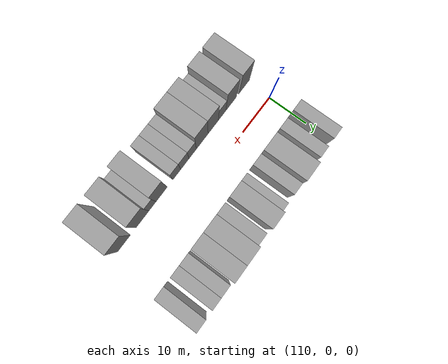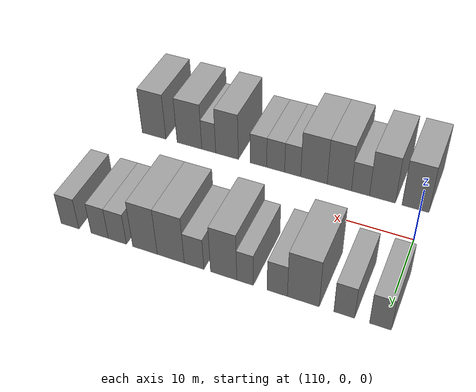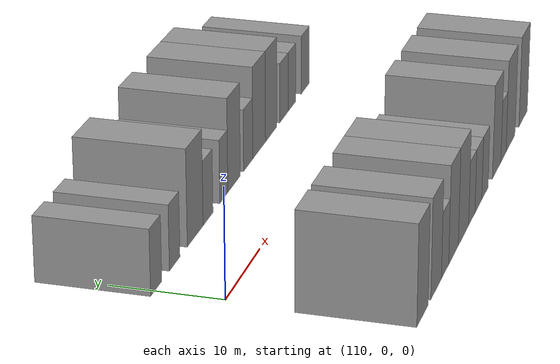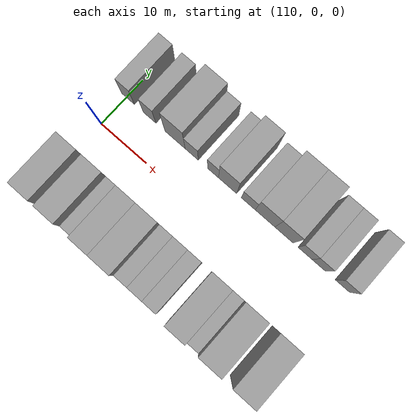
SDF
<sdf version="1.6">
 <world name="default">
  <model name="building_26">
   <static>1</static>
   <pose>110.3970 11.0000 0 0.000000 0.000000 1.570796</pose>
   <link name="link">
    <pose>0 0 3.00 0 0 0</pose>
    <collision name="collision"><geometry><box><size>10.0000 2.8928 6.0000</size></box></geometry></collision>
    <visual name="visual">
     <cast_shadows>0</cast_shadows>
     <geometry><box><size>10.0000 2.8928 6.0000</size></box></geometry>
     <material>
      <script>
       <uri>model://grey_wall/materials/scripts</uri>
       <uri>model://grey_wall/materials/textures</uri>
       <name>vrc/grey_wall</name>
      </script>
     </material>
    </visual>
   </link>
  </model>
  <model name="building_27">
   <static>1</static>
   <pose>115.2579 11.0000 0 0.000000 0.000000 1.570796</pose>
   <link name="link">
    <pose>0 0 3.00 0 0 0</pose>
    <collision name="collision"><geometry><box><size>10.0000 2.8290 6.0000</size></box></geometry></collision>
    <visual name="visual">
     <cast_shadows>0</cast_shadows>
     <geometry><box><size>10.0000 2.8290 6.0000</size></box></geometry>
     <material>
      <script>
       <uri>model://grey_wall/materials/scripts</uri>
       <uri>model://grey_wall/materials/textures</uri>
       <name>vrc/grey_wall</name>
      </script>
     </material>
    </visual>
   </link>
  </model>
  <model name="building_28">
   <static>1</static>
   <pose>120.9026 11.0000 0 0.000000 0.000000 1.570796</pose>
   <link name="link">
    <pose>0 0 4.50 0 0 0</pose>
    <collision name="collision"><geometry><box><size>10.0000 4.4603 9.0000</size></box></geometry></collision>
    <visual name="visual">
     <cast_shadows>0</cast_shadows>
     <geometry><box><size>10.0000 4.4603 9.0000</size></box></geometry>
     <material>
      <script>
       <uri>model://grey_wall/materials/scripts</uri>
       <uri>model://grey_wall/materials/textures</uri>
       <name>vrc/grey_wall</name>
      </script>
     </material>
    </visual>
   </link>
  </model>
  <model name="building_29">
   <static>1</static>
   <pose>124.5694 11.0000 0 0.000000 0.000000 1.570796</pose>
   <link name="link">
    <pose>0 0 3.00 0 0 0</pose>
    <collision name="collision"><geometry><box><size>10.0000 2.8734 6.0000</size></box></geometry></collision>
    <visual name="visual">
     <cast_shadows>0</cast_shadows>
     <geometry><box><size>10.0000 2.8734 6.0000</size></box></geometry>
     <material>
      <script>
       <uri>model://grey_wall/materials/scripts</uri>
       <uri>model://grey_wall/materials/textures</uri>
       <name>vrc/grey_wall</name>
      </script>
     </material>
    </visual>
   </link>
  </model>
  <model name="building_30">
   <static>1</static>
   <pose>129.2118 11.0000 0 0.000000 0.000000 1.570796</pose>
   <link name="link">
    <pose>0 0 3.00 0 0 0</pose>
    <collision name="collision"><geometry><box><size>10.0000 2.4114 6.0000</size></box></geometry></collision>
    <visual name="visual">
     <cast_shadows>0</cast_shadows>
     <geometry><box><size>10.0000 2.4114 6.0000</size></box></geometry>
     <material>
      <script>
       <uri>model://grey_wall/materials/scripts</uri>
       <uri>model://grey_wall/materials/textures</uri>
       <name>vrc/grey_wall</name>
      </script>
     </material>
    </visual>
   </link>
  </model>
  <model name="building_31">
   <static>1</static>
   <pose>132.3618 11.0000 0 0.000000 0.000000 1.570796</pose>
   <link name="link">
    <pose>0 0 4.50 0 0 0</pose>
    <collision name="collision"><geometry><box><size>10.0000 3.8887 9.0000</size></box></geometry></collision>
    <visual name="visual">
     <cast_shadows>0</cast_shadows>
     <geometry><box><size>10.0000 3.8887 9.0000</size></box></geometry>
     <material>
      <script>
       <uri>model://grey_wall/materials/scripts</uri>
       <uri>model://grey_wall/materials/textures</uri>
       <name>vrc/grey_wall</name>
      </script>
     </material>
    </visual>
   </link>
  </model>
  <model name="building_32">
   <static>1</static>
   <pose>136.7934 11.0000 0 0.000000 0.000000 1.570796</pose>
   <link name="link">
    <pose>0 0 3.00 0 0 0</pose>
    <collision name="collision"><geometry><box><size>10.0000 2.9744 6.0000</size></box></geometry></collision>
    <visual name="visual">
     <cast_shadows>0</cast_shadows>
     <geometry><box><size>10.0000 2.9744 6.0000</size></box></geometry>
     <material>
      <script>
       <uri>model://grey_wall/materials/scripts</uri>
       <uri>model://grey_wall/materials/textures</uri>
       <name>vrc/grey_wall</name>
      </script>
     </material>
    </visual>
   </link>
  </model>
  <model name="building_33">
   <static>1</static>
   <pose>140.3611 11.0000 0 0.000000 0.000000 1.570796</pose>
   <link name="link">
    <pose>0 0 4.50 0 0 0</pose>
    <collision name="collision"><geometry><box><size>10.0000 4.1609 9.0000</size></box></geometry></collision>
    <visual name="visual">
     <cast_shadows>0</cast_shadows>
     <geometry><box><size>10.0000 4.1609 9.0000</size></box></geometry>
     <material>
      <script>
       <uri>model://grey_wall/materials/scripts</uri>
       <uri>model://grey_wall/materials/textures</uri>
       <name>vrc/grey_wall</name>
      </script>
     </material>
    </visual>
   </link>
  </model>
  <model name="building_34">
   <static>1</static>
   <pose>144.3769 11.0000 0 0.000000 0.000000 1.570796</pose>
   <link name="link">
    <pose>0 0 4.50 0 0 0</pose>
    <collision name="collision"><geometry><box><size>10.0000 3.8707 9.0000</size></box></geometry></collision>
    <visual name="visual">
     <cast_shadows>0</cast_shadows>
     <geometry><box><size>10.0000 3.8707 9.0000</size></box></geometry>
     <material>
      <script>
       <uri>model://grey_wall/materials/scripts</uri>
       <uri>model://grey_wall/materials/textures</uri>
       <name>vrc/grey_wall</name>
      </script>
     </material>
    </visual>
   </link>
  </model>
  <model name="building_35">
   <static>1</static>
   <pose>148.7696 11.0000 0 0.000000 0.000000 1.570796</pose>
   <link name="link">
    <pose>0 0 3.00 0 0 0</pose>
    <collision name="collision"><geometry><box><size>10.0000 2.9146 6.0000</size></box></geometry></collision>
    <visual name="visual">
     <cast_shadows>0</cast_shadows>
     <geometry><box><size>10.0000 2.9146 6.0000</size></box></geometry>
     <material>
      <script>
       <uri>model://grey_wall/materials/scripts</uri>
       <uri>model://grey_wall/materials/textures</uri>
       <name>vrc/grey_wall</name>
      </script>
     </material>
    </visual>
   </link>
  </model>
  <model name="building_36">
   <static>1</static>
   <pose>151.6270 11.0000 0 0.000000 0.000000 1.570796</pose>
   <link name="link">
    <pose>0 0 3.00 0 0 0</pose>
    <collision name="collision"><geometry><box><size>10.0000 2.8002 6.0000</size></box></geometry></collision>
    <visual name="visual">
     <cast_shadows>0</cast_shadows>
     <geometry><box><size>10.0000 2.8002 6.0000</size></box></geometry>
     <material>
      <script>
       <uri>model://grey_wall/materials/scripts</uri>
       <uri>model://grey_wall/materials/textures</uri>
       <name>vrc/grey_wall</name>
      </script>
     </material>
    </visual>
   </link>
  </model>
  <model name="building_37">
   <static>1</static>
   <pose>156.5075 11.0000 0 0.000000 0.000000 1.570796</pose>
   <link name="link">
    <pose>0 0 3.00 0 0 0</pose>
    <collision name="collision"><geometry><box><size>10.0000 2.9610 6.0000</size></box></geometry></collision>
    <visual name="visual">
     <cast_shadows>0</cast_shadows>
     <geometry><box><size>10.0000 2.9610 6.0000</size></box></geometry>
     <material>
      <script>
       <uri>model://grey_wall/materials/scripts</uri>
       <uri>model://grey_wall/materials/textures</uri>
       <name>vrc/grey_wall</name>
      </script>
     </material>
    </visual>
   </link>
  </model>
  <model name="building_74">
   <static>1</static>
   <pose>111.3122 -11.0000 0 0.000000 0.000000 1.570796</pose>
   <link name="link">
    <pose>0 0 4.50 0 0 0</pose>
    <collision name="collision"><geometry><box><size>10.0000 4.0445 9.0000</size></box></geometry></collision>
    <visual name="visual">
     <cast_shadows>0</cast_shadows>
     <geometry><box><size>10.0000 4.0445 9.0000</size></box></geometry>
     <material>
      <script>
       <uri>model://grey_wall/materials/scripts</uri>
       <uri>model://grey_wall/materials/textures</uri>
       <name>vrc/grey_wall</name>
      </script>
     </material>
    </visual>
   </link>
  </model>
  <model name="building_75">
   <static>1</static>
   <pose>116.3274 -11.0000 0 0.000000 0.000000 1.570796</pose>
   <link name="link">
    <pose>0 0 4.50 0 0 0</pose>
    <collision name="collision"><geometry><box><size>10.0000 3.9859 9.0000</size></box></geometry></collision>
    <visual name="visual">
     <cast_shadows>0</cast_shadows>
     <geometry><box><size>10.0000 3.9859 9.0000</size></box></geometry>
     <material>
      <script>
       <uri>model://grey_wall/materials/scripts</uri>
       <uri>model://grey_wall/materials/textures</uri>
       <name>vrc/grey_wall</name>
      </script>
     </material>
    </visual>
   </link>
  </model>
  <model name="building_76">
   <static>1</static>
   <pose>119.7270 -11.0000 0 0.000000 0.000000 1.570796</pose>
   <link name="link">
    <pose>0 0 3.00 0 0 0</pose>
    <collision name="collision"><geometry><box><size>10.0000 2.8134 6.0000</size></box></geometry></collision>
    <visual name="visual">
     <cast_shadows>0</cast_shadows>
     <geometry><box><size>10.0000 2.8134 6.0000</size></box></geometry>
     <material>
      <script>
       <uri>model://grey_wall/materials/scripts</uri>
       <uri>model://grey_wall/materials/textures</uri>
       <name>vrc/grey_wall</name>
      </script>
     </material>
    </visual>
   </link>
  </model>
  <model name="building_77">
   <static>1</static>
   <pose>123.0433 -11.0000 0 0.000000 0.000000 1.570796</pose>
   <link name="link">
    <pose>0 0 4.50 0 0 0</pose>
    <collision name="collision"><geometry><box><size>10.0000 3.8192 9.0000</size></box></geometry></collision>
    <visual name="visual">
     <cast_shadows>0</cast_shadows>
     <geometry><box><size>10.0000 3.8192 9.0000</size></box></geometry>
     <material>
      <script>
       <uri>model://grey_wall/materials/scripts</uri>
       <uri>model://grey_wall/materials/textures</uri>
       <name>vrc/grey_wall</name>
      </script>
     </material>
    </visual>
   </link>
  </model>
  <model name="building_78">
   <static>1</static>
   <pose>127.0826 -11.0000 0 0.000000 0.000000 1.570796</pose>
   <link name="link">
    <pose>0 0 4.50 0 0 0</pose>
    <collision name="collision"><geometry><box><size>10.0000 4.2594 9.0000</size></box></geometry></collision>
    <visual name="visual">
     <cast_shadows>0</cast_shadows>
     <geometry><box><size>10.0000 4.2594 9.0000</size></box></geometry>
     <material>
      <script>
       <uri>model://grey_wall/materials/scripts</uri>
       <uri>model://grey_wall/materials/textures</uri>
       <name>vrc/grey_wall</name>
      </script>
     </material>
    </visual>
   </link>
  </model>
  <model name="building_79">
   <static>1</static>
   <pose>130.5318 -11.0000 0 0.000000 0.000000 1.570796</pose>
   <link name="link">
    <pose>0 0 3.00 0 0 0</pose>
    <collision name="collision"><geometry><box><size>10.0000 2.6389 6.0000</size></box></geometry></collision>
    <visual name="visual">
     <cast_shadows>0</cast_shadows>
     <geometry><box><size>10.0000 2.6389 6.0000</size></box></geometry>
     <material>
      <script>
       <uri>model://grey_wall/materials/scripts</uri>
       <uri>model://grey_wall/materials/textures</uri>
       <name>vrc/grey_wall</name>
      </script>
     </material>
    </visual>
   </link>
  </model>
  <model name="building_80">
   <static>1</static>
   <pose>133.3318 -11.0000 0 0.000000 0.000000 1.570796</pose>
   <link name="link">
    <pose>0 0 3.00 0 0 0</pose>
    <collision name="collision"><geometry><box><size>10.0000 2.9610 6.0000</size></box></geometry></collision>
    <visual name="visual">
     <cast_shadows>0</cast_shadows>
     <geometry><box><size>10.0000 2.9610 6.0000</size></box></geometry>
     <material>
      <script>
       <uri>model://grey_wall/materials/scripts</uri>
       <uri>model://grey_wall/materials/textures</uri>
       <name>vrc/grey_wall</name>
      </script>
     </material>
    </visual>
   </link>
  </model>
  <model name="building_81">
   <static>1</static>
   <pose>136.1975 -11.0000 0 0.000000 0.000000 1.570796</pose>
   <link name="link">
    <pose>0 0 3.00 0 0 0</pose>
    <collision name="collision"><geometry><box><size>10.0000 2.7705 6.0000</size></box></geometry></collision>
    <visual name="visual">
     <cast_shadows>0</cast_shadows>
     <geometry><box><size>10.0000 2.7705 6.0000</size></box></geometry>
     <material>
      <script>
       <uri>model://grey_wall/materials/scripts</uri>
       <uri>model://grey_wall/materials/textures</uri>
       <name>vrc/grey_wall</name>
      </script>
     </material>
    </visual>
   </link>
  </model>
  <model name="building_82">
   <static>1</static>
   <pose>141.5316 -11.0000 0 0.000000 0.000000 1.570796</pose>
   <link name="link">
    <pose>0 0 4.50 0 0 0</pose>
    <collision name="collision"><geometry><box><size>10.0000 3.8975 9.0000</size></box></geometry></collision>
    <visual name="visual">
     <cast_shadows>0</cast_shadows>
     <geometry><box><size>10.0000 3.8975 9.0000</size></box></geometry>
     <material>
      <script>
       <uri>model://grey_wall/materials/scripts</uri>
       <uri>model://grey_wall/materials/textures</uri>
       <name>vrc/grey_wall</name>
      </script>
     </material>
    </visual>
   </link>
  </model>
  <model name="building_83">
   <static>1</static>
   <pose>144.6869 -11.0000 0 0.000000 0.000000 1.570796</pose>
   <link name="link">
    <pose>0 0 3.00 0 0 0</pose>
    <collision name="collision"><geometry><box><size>10.0000 2.4132 6.0000</size></box></geometry></collision>
    <visual name="visual">
     <cast_shadows>0</cast_shadows>
     <geometry><box><size>10.0000 2.4132 6.0000</size></box></geometry>
     <material>
      <script>
       <uri>model://grey_wall/materials/scripts</uri>
       <uri>model://grey_wall/materials/textures</uri>
       <name>vrc/grey_wall</name>
      </script>
     </material>
    </visual>
   </link>
  </model>
  <model name="building_84">
   <static>1</static>
   <pose>148.0735 -11.0000 0 0.000000 0.000000 1.570796</pose>
   <link name="link">
    <pose>0 0 4.50 0 0 0</pose>
    <collision name="collision"><geometry><box><size>10.0000 4.3600 9.0000</size></box></geometry></collision>
    <visual name="visual">
     <cast_shadows>0</cast_shadows>
     <geometry><box><size>10.0000 4.3600 9.0000</size></box></geometry>
     <material>
      <script>
       <uri>model://grey_wall/materials/scripts</uri>
       <uri>model://grey_wall/materials/textures</uri>
       <name>vrc/grey_wall</name>
      </script>
     </material>
    </visual>
   </link>
  </model>
  <model name="building_85">
   <static>1</static>
   <pose>154.3914 -11.0000 0 0.000000 0.000000 1.570796</pose>
   <link name="link">
    <pose>0 0 4.50 0 0 0</pose>
    <collision name="collision"><geometry><box><size>10.0000 4.2757 9.0000</size></box></geometry></collision>
    <visual name="visual">
     <cast_shadows>0</cast_shadows>
     <geometry><box><size>10.0000 4.2757 9.0000</size></box></geometry>
     <material>
      <script>
       <uri>model://grey_wall/materials/scripts</uri>
       <uri>model://grey_wall/materials/textures</uri>
       <name>vrc/grey_wall</name>
      </script>
     </material>
    </visual>
   </link>
  </model>
 </world>
</sdf>
